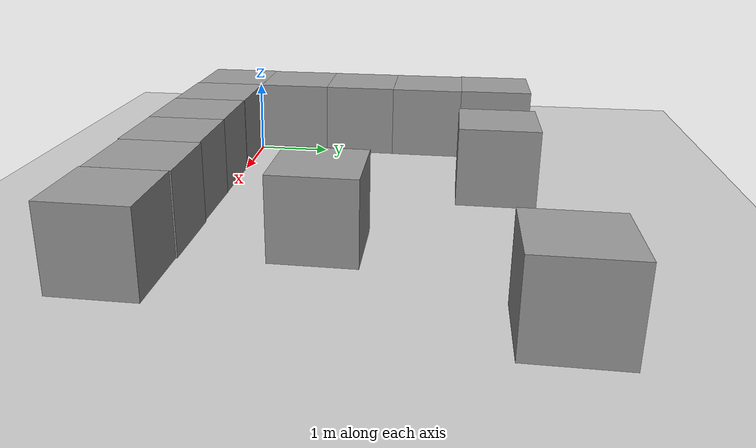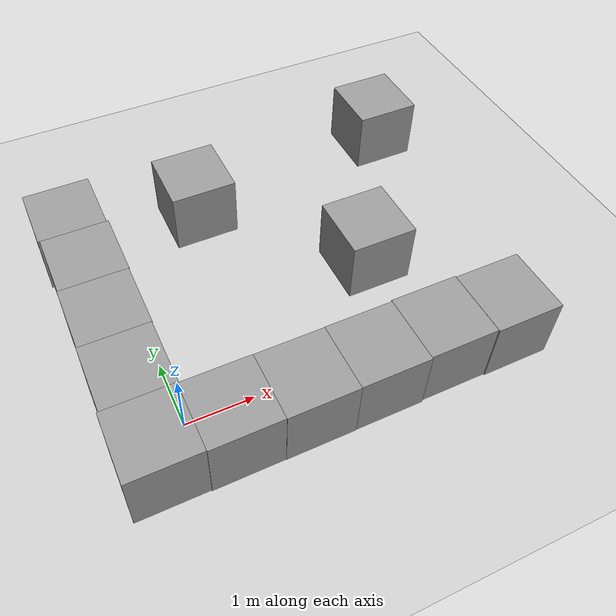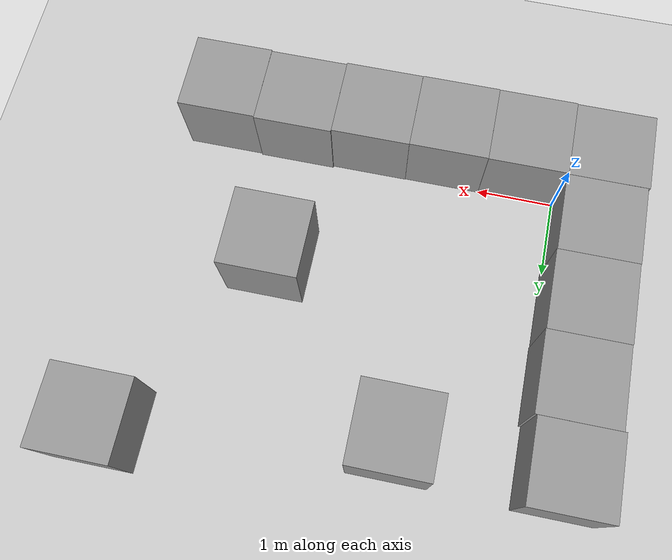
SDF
<sdf version="1.4">
 <world name="default">
  <light name="sun" type="directional">
   <pose>0 0 10 0 -0 0</pose>
   <diffuse>0.8 0.8 0.8 1</diffuse>
   <specular>0.2 0.2 0.2 1</specular>
   <attenuation>
    <range>1000</range>
    <constant>0.9</constant>
    <linear>0.01</linear>
    <quadratic>0.001</quadratic>
   </attenuation>
   <direction>0.5 0.1 -0.9</direction>
  </light>
  <model name="ground_plane">
   <static>1</static>
   <link name="link">
    <collision name="collision">
     <geometry><plane><normal>0 0 1</normal><size>100 100</size></plane></geometry>
     <surface><friction><ode><mu>100</mu><mu2>50</mu2></ode></friction></surface>
    </collision>
    <visual name="visual">
     <cast_shadows>0</cast_shadows>
     <geometry><plane><normal>0 0 1</normal><size>100 100</size></plane></geometry>
     <material>
      <script><uri>file://media/materials/scripts/gazebo.material</uri><name>Gazebo/Grey</name></script>
     </material>
    </visual>
    <velocity_decay><linear>0</linear><angular>0</angular></velocity_decay>
   </link>
  </model>
  <physics type="ode">
   <max_step_size>0.01</max_step_size>
   <real_time_factor>1</real_time_factor>
   <real_time_update_rate>100</real_time_update_rate>
   <gravity>0 0 -9.8</gravity>
  </physics>
  <scene><ambient>0.4 0.4 0.4 1</ambient><background>0.7 0.7 0.7 1</background><shadows>1</shadows></scene>
  <model name="unit_box_1">
   <pose>3.48321 1.4964 0.5 0 -0 0</pose>
   <link name="link">
    <inertial>
     <mass>1</mass>
     <inertia><ixx>1</ixx><ixy>0</ixy><ixz>0</ixz><iyy>1</iyy><iyz>0</iyz><izz>1</izz></inertia>
    </inertial>
    <collision name="collision"><geometry><box><size>1 1 1</size></box></geometry></collision>
    <visual name="visual">
     <geometry><box><size>1 1 1</size></box></geometry>
     <material>
      <script><uri>file://media/materials/scripts/gazebo.material</uri><name>Gazebo/Grey</name></script>
     </material>
    </visual>
    <velocity_decay><linear>0</linear><angular>0</angular></velocity_decay>
   </link>
   <static>0</static>
  </model>
  <model name="unit_box_2">
   <pose>1.50839 3.48256 0.5 0 -0 0</pose>
   <link name="link">
    <inertial>
     <mass>1</mass>
     <inertia><ixx>1</ixx><ixy>0</ixy><ixz>0</ixz><iyy>1</iyy><iyz>0</iyz><izz>1</izz></inertia>
    </inertial>
    <collision name="collision"><geometry><box><size>1 1 1</size></box></geometry></collision>
    <visual name="visual">
     <geometry><box><size>1 1 1</size></box></geometry>
     <material>
      <script><uri>file://media/materials/scripts/gazebo.material</uri><name>Gazebo/Grey</name></script>
     </material>
    </visual>
    <velocity_decay><linear>0</linear><angular>0</angular></velocity_decay>
   </link>
   <static>0</static>
  </model>
  <model name="unit_box_3">
   <pose>5 4 0.5 0 -0 0</pose>
   <link name="link">
    <inertial>
     <mass>1</mass>
     <inertia><ixx>1</ixx><ixy>0</ixy><ixz>0</ixz><iyy>1</iyy><iyz>0</iyz><izz>1</izz></inertia>
    </inertial>
    <collision name="collision"><geometry><box><size>1 1 1</size></box></geometry></collision>
    <visual name="visual">
     <geometry><box><size>1 1 1</size></box></geometry>
     <material>
      <script><uri>file://media/materials/scripts/gazebo.material</uri><name>Gazebo/Grey</name></script>
     </material>
    </visual>
    <velocity_decay><linear>0</linear><angular>0</angular></velocity_decay>
   </link>
   <static>0</static>
  </model>
  <model name="unit_box_4">
   <pose>0.499096 -0.494634 0.5 0 0 -0.000507</pose>
   <link name="link">
    <inertial>
     <mass>1</mass>
     <inertia><ixx>1</ixx><ixy>0</ixy><ixz>0</ixz><iyy>1</iyy><iyz>0</iyz><izz>1</izz></inertia>
    </inertial>
    <collision name="collision"><geometry><box><size>1 1 1</size></box></geometry></collision>
    <visual name="visual">
     <geometry><box><size>1 1 1</size></box></geometry>
     <material>
      <script><uri>file://media/materials/scripts/gazebo.material</uri><name>Gazebo/Grey</name></script>
     </material>
    </visual>
    <velocity_decay><linear>0</linear><angular>0</angular></velocity_decay>
   </link>
   <static>0</static>
  </model>
  <model name="unit_box_5">
   <pose>1.4991 -0.500106 0.5 0 -0 -0.000484</pose>
   <link name="link">
    <inertial>
     <mass>1</mass>
     <inertia><ixx>1</ixx><ixy>0</ixy><ixz>0</ixz><iyy>1</iyy><iyz>0</iyz><izz>1</izz></inertia>
    </inertial>
    <collision name="collision"><geometry><box><size>1 1 1</size></box></geometry></collision>
    <visual name="visual">
     <geometry><box><size>1 1 1</size></box></geometry>
     <material>
      <script><uri>file://media/materials/scripts/gazebo.material</uri><name>Gazebo/Grey</name></script>
     </material>
    </visual>
    <velocity_decay><linear>0</linear><angular>0</angular></velocity_decay>
   </link>
   <static>0</static>
  </model>
  <model name="unit_box_6">
   <pose>2.49915 -0.495734 0.5 0 0 -0.000452</pose>
   <link name="link">
    <inertial>
     <mass>1</mass>
     <inertia><ixx>1</ixx><ixy>0</ixy><ixz>0</ixz><iyy>1</iyy><iyz>0</iyz><izz>1</izz></inertia>
    </inertial>
    <collision name="collision"><geometry><box><size>1 1 1</size></box></geometry></collision>
    <visual name="visual">
     <geometry><box><size>1 1 1</size></box></geometry>
     <material>
      <script><uri>file://media/materials/scripts/gazebo.material</uri><name>Gazebo/Grey</name></script>
     </material>
    </visual>
    <velocity_decay><linear>0</linear><angular>0</angular></velocity_decay>
   </link>
   <static>0</static>
  </model>
  <model name="unit_box_7">
   <pose>3.49918 -0.476312 0.5 0 0 -0.000473</pose>
   <link name="link">
    <inertial>
     <mass>1</mass>
     <inertia><ixx>1</ixx><ixy>0</ixy><ixz>0</ixz><iyy>1</iyy><iyz>0</iyz><izz>1</izz></inertia>
    </inertial>
    <collision name="collision"><geometry><box><size>1 1 1</size></box></geometry></collision>
    <visual name="visual">
     <geometry><box><size>1 1 1</size></box></geometry>
     <material>
      <script><uri>file://media/materials/scripts/gazebo.material</uri><name>Gazebo/Grey</name></script>
     </material>
    </visual>
    <velocity_decay><linear>0</linear><angular>0</angular></velocity_decay>
   </link>
   <static>0</static>
  </model>
  <model name="unit_box_8">
   <pose>-0.500919 -0.483308 0.5 0 -0 -0.000489</pose>
   <link name="link">
    <inertial>
     <mass>1</mass>
     <inertia><ixx>1</ixx><ixy>0</ixy><ixz>0</ixz><iyy>1</iyy><iyz>0</iyz><izz>1</izz></inertia>
    </inertial>
    <collision name="collision"><geometry><box><size>1 1 1</size></box></geometry></collision>
    <visual name="visual">
     <geometry><box><size>1 1 1</size></box></geometry>
     <material>
      <script><uri>file://media/materials/scripts/gazebo.material</uri><name>Gazebo/Grey</name></script>
     </material>
    </visual>
    <velocity_decay><linear>0</linear><angular>0</angular></velocity_decay>
   </link>
   <static>0</static>
  </model>
  <model name="unit_box_9">
   <pose>-0.478482 0.516907 0.5 0 0 -0.00011</pose>
   <link name="link">
    <inertial>
     <mass>1</mass>
     <inertia><ixx>1</ixx><ixy>0</ixy><ixz>0</ixz><iyy>1</iyy><iyz>0</iyz><izz>1</izz></inertia>
    </inertial>
    <collision name="collision"><geometry><box><size>1 1 1</size></box></geometry></collision>
    <visual name="visual">
     <geometry><box><size>1 1 1</size></box></geometry>
     <material>
      <script><uri>file://media/materials/scripts/gazebo.material</uri><name>Gazebo/Grey</name></script>
     </material>
    </visual>
    <velocity_decay><linear>0</linear><angular>0</angular></velocity_decay>
   </link>
   <static>0</static>
  </model>
  <model name="unit_box_10">
   <pose>-0.471771 1.51694 0.5 0 -0 -0.000149</pose>
   <link name="link">
    <inertial>
     <mass>1</mass>
     <inertia><ixx>1</ixx><ixy>0</ixy><ixz>0</ixz><iyy>1</iyy><iyz>0</iyz><izz>1</izz></inertia>
    </inertial>
    <collision name="collision"><geometry><box><size>1 1 1</size></box></geometry></collision>
    <visual name="visual">
     <geometry><box><size>1 1 1</size></box></geometry>
     <material>
      <script><uri>file://media/materials/scripts/gazebo.material</uri><name>Gazebo/Grey</name></script>
     </material>
    </visual>
    <velocity_decay><linear>0</linear><angular>0</angular></velocity_decay>
   </link>
   <static>0</static>
  </model>
  <model name="unit_box_11">
   <pose>-0.464654 2.51696 0.5 0 0 -0.000112</pose>
   <link name="link">
    <inertial>
     <mass>1</mass>
     <inertia><ixx>1</ixx><ixy>0</ixy><ixz>0</ixz><iyy>1</iyy><iyz>0</iyz><izz>1</izz></inertia>
    </inertial>
    <collision name="collision"><geometry><box><size>1 1 1</size></box></geometry></collision>
    <visual name="visual">
     <geometry><box><size>1 1 1</size></box></geometry>
     <material>
      <script><uri>file://media/materials/scripts/gazebo.material</uri><name>Gazebo/Grey</name></script>
     </material>
    </visual>
    <velocity_decay><linear>0</linear><angular>0</angular></velocity_decay>
   </link>
   <static>0</static>
  </model>
  <model name="unit_box_12">
   <pose>-0.494004 3.51701 0.5 0 -0 -1.1e-05</pose>
   <link name="link">
    <inertial>
     <mass>1</mass>
     <inertia><ixx>1</ixx><ixy>0</ixy><ixz>0</ixz><iyy>1</iyy><iyz>0</iyz><izz>1</izz></inertia>
    </inertial>
    <collision name="collision"><geometry><box><size>1 1 1</size></box></geometry></collision>
    <visual name="visual">
     <geometry><box><size>1 1 1</size></box></geometry>
     <material>
      <script><uri>file://media/materials/scripts/gazebo.material</uri><name>Gazebo/Grey</name></script>
     </material>
    </visual>
    <velocity_decay><linear>0</linear><angular>0</angular></velocity_decay>
   </link>
   <static>0</static>
  </model>
  <model name="unit_box_13">
   <pose>4.49941 -0.492924 0.5 0 -0 0</pose>
   <link name="link">
    <inertial>
     <mass>1</mass>
     <inertia><ixx>1</ixx><ixy>0</ixy><ixz>0</ixz><iyy>1</iyy><iyz>0</iyz><izz>1</izz></inertia>
    </inertial>
    <collision name="collision"><geometry><box><size>1 1 1</size></box></geometry></collision>
    <visual name="visual">
     <geometry><box><size>1 1 1</size></box></geometry>
     <material>
      <script><uri>file://media/materials/scripts/gazebo.material</uri><name>Gazebo/Grey</name></script>
     </material>
    </visual>
    <velocity_decay><linear>0</linear><angular>0</angular></velocity_decay>
   </link>
   <static>0</static>
  </model>
 </world>
</sdf>
